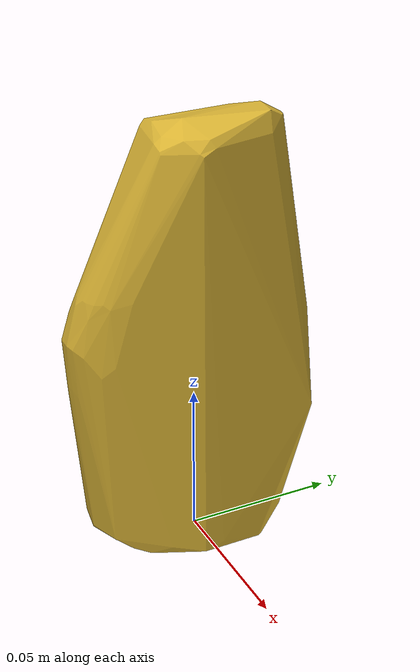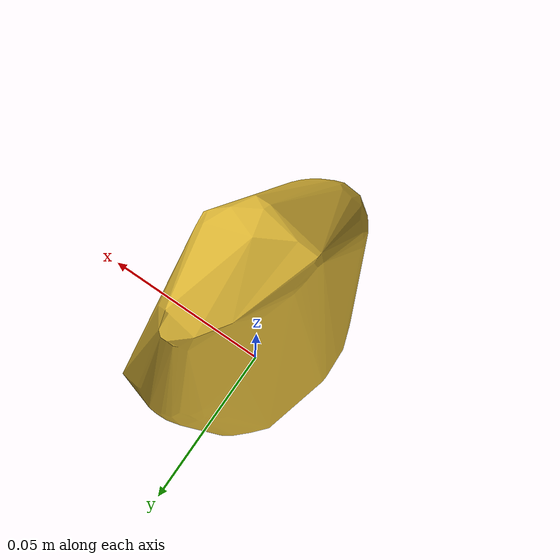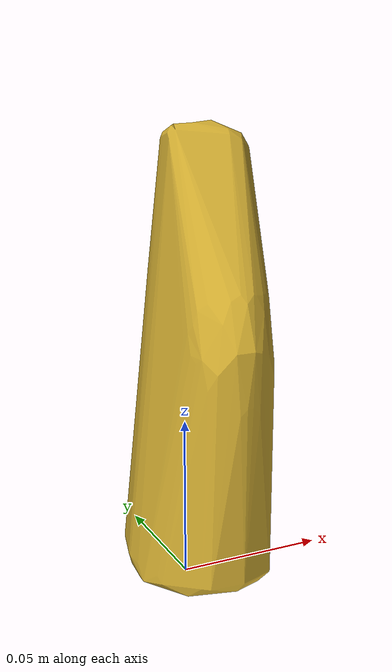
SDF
<?xml version='1.0'?>
<sdf version="1.4">
  <model name="softsoap_gold">
    <static>false</static>
    <link name="link">
      <inertial>
        <pose>0.004008156440914161 -0.00295974689663072 0.06452949155145317 -3.089452906388919 -0.019684333490649807 2.9656903813288626</pose>
        <mass>0.0254020821051063</mass>
        <inertia>
          <ixx>3.946536796225333e-05</ixx>
          <ixy>-9.522106858282011e-23</ixy>
          <ixz>5.034919922327066e-23</ixz>
          <iyy>3.41987025544772e-05</iyy>
          <iyz>3.0404090487351184e-21</iyz>
          <izz>9.872806483780963e-06</izz>
        </inertia>
      </inertial>
      <collision name="collision">
        <geometry>
          <mesh>
            <!-- Use a downsampled mesh for collisions -->
            <uri>model:///softsoap_gold/softsoap_gold_250_collision.obj</uri>
	        </mesh>
        </geometry>
        <surface>
      </surface>
      </collision>
      <visual name="visual">
        <geometry>
          <mesh>
            <uri>model:///softsoap_gold/optimized_tsdf_texture_mapped_mesh.obj</uri>
	        </mesh>
        </geometry>
        <material>
          <script>
            <uri>model:///softsoap_gold/softsoap_gold.material</uri>
            <name>softsoap_gold</name>
          </script>
        </material>
      </visual>
    </link>
  </model>
</sdf>
